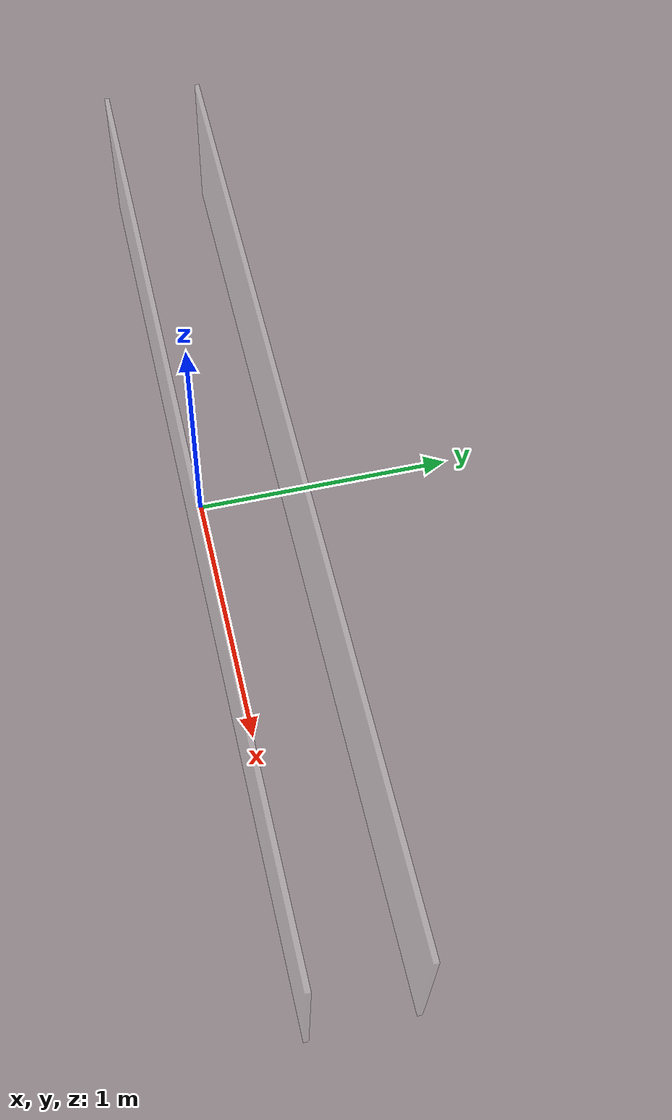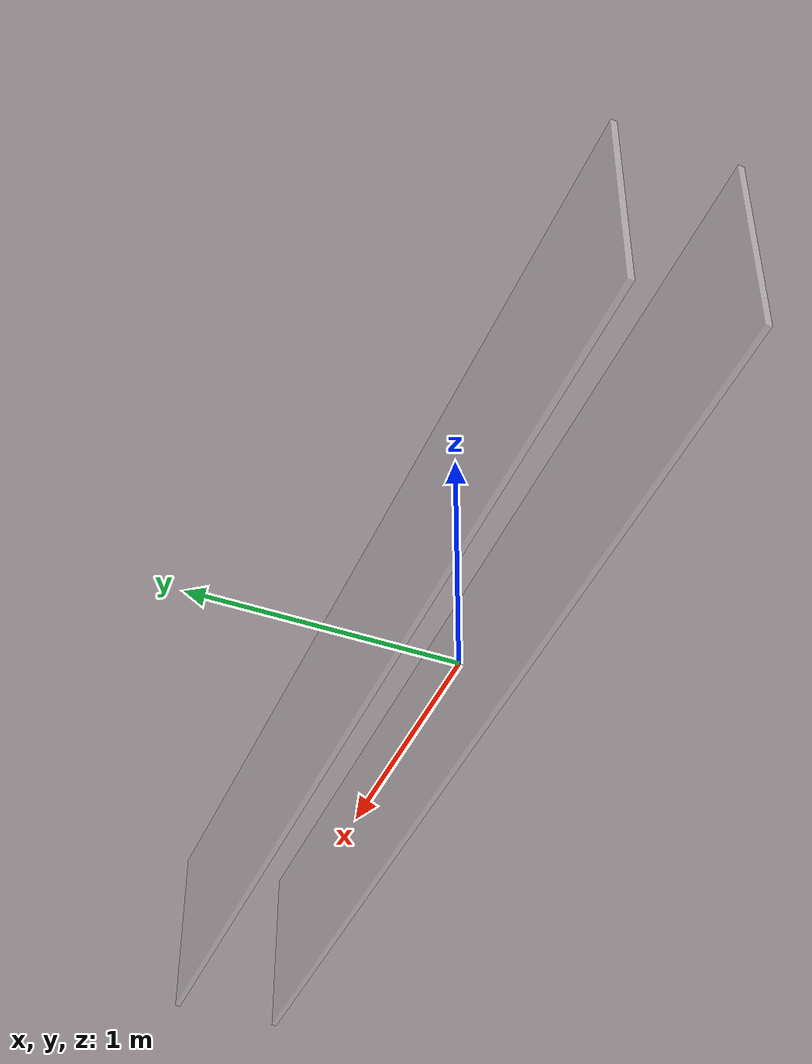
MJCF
<?xml version="1.0" encoding="utf-8"?>
<mujoco>
   <worldbody>
      <body name="wall_1" pos="0 -0.03 -0.015">
         <geom type="box" size="2 0.01 0.35"  mass="2" rgba="1 1 1 0.25" friction="0.0"/>
      </body>
      <body name="wall_2" pos="0 0.38 -0.015">
         <geom type="box" size="2 0.01 0.35" mass="2" rgba="1 1 1 0.25" friction="0.0"/>
      </body>
   </worldbody>
</mujoco>
